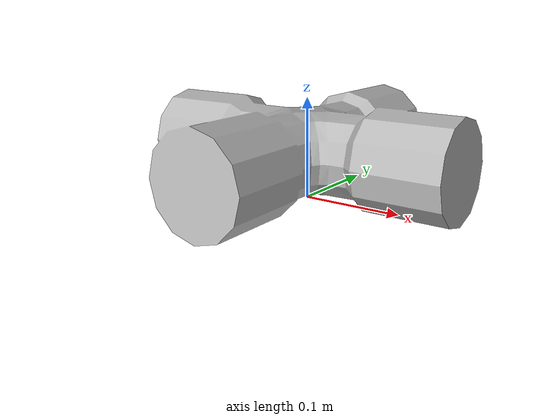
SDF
<?xml version="1.0" ?>
<sdf version="1.6">
  <model name="cross_joint_part">
    <link name="link">
      <inertial>
        <pose>0 0 0.048275 0 0 0</pose>
        <mass>0.5</mass>
        <inertia>
          <ixx>0.0045543476</ixx>
          <ixy>0</ixy>
          <ixz>0</ixz>
          <iyy>0.0045543476</iyy>
          <iyz>0</iyz>
          <izz>0.00833187</izz>
        </inertia>
      </inertial>

      <collision name="collisionY">
        <pose>0 0 0.048275 1.5707 0 0</pose>
        <geometry>
          <cylinder>
            <length>0.3162</length>
            <radius>0.04830</radius>
          </cylinder>
        </geometry>
      </collision>

      <collision name="collisionX">
        <pose>0 0 0.048275 0 1.5707 0</pose>
        <geometry>
          <cylinder>
            <length>0.3162</length>
            <radius>0.04830</radius>
          </cylinder>
        </geometry>
      </collision>

      <visual name="visual">
         <geometry>
           <mesh>
             <uri>model://cross_joint_part/meshes/cross_joint.dae</uri>
           </mesh>
         </geometry>
        <material>
          <script>
            <uri>model://arm_part/materials/scripts</uri>
            <uri>model://arm_part/materials/textures</uri>
            <name>ArmPart/Diffuse</name>
          </script>
        </material>
       </visual>
    </link>
  </model>
</sdf>
